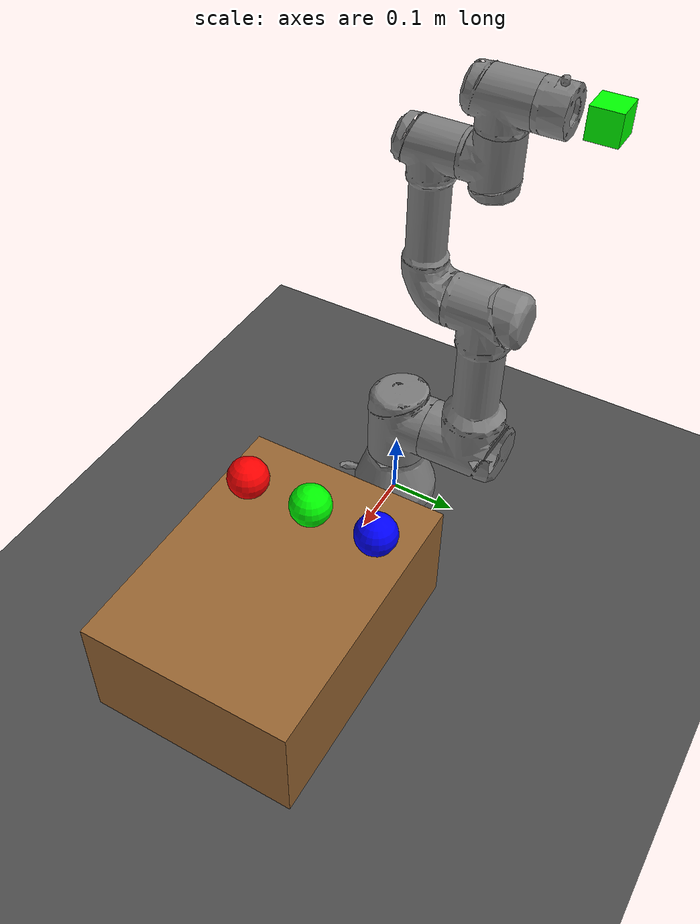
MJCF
<mujoco model="ur3 scene">

    <include file="ur3.xml"/>

    <statistic center="0.3 0 0.4"
               extent="1.0"/>

    <visual>

        <headlight diffuse="1 1 1"
                   ambient="0.3 0.3 0.3"
                   specular="0.2 0.2 0.2"/>

        <rgba haze="0.05 0.1 0.15 1"/>

        <global azimuth="135"
                elevation="-20"/>

    </visual>

    <asset>

        <texture
            type="skybox"
            builtin="gradient"
            rgb1="0.6 0.8 1.0"
            rgb2="0.1 0.2 0.3"
            width="512"
            height="3072"/>

        <texture
            type="2d"
            name="groundplane"
            builtin="checker"
            rgb1="0.4 0.4 0.4"
            rgb2="0.2 0.2 0.2"
            width="300"
            height="300"/>

        <material
            name="groundplane"
            texture="groundplane"
            texrepeat="5 5"/>

    </asset>

    <worldbody>

        <light pos="0 0 3"/>

        <geom
            name="floor"
            type="plane"
            size="0 0 0.05"
            material="groundplane"/>

        <body name="table">

            <geom
                type="box"
                pos="0.35 0 0.08"
                size="0.20 0.15 0.08"
                rgba="0.6 0.4 0.2 1"/>

        </body>

    </worldbody>

</mujoco>

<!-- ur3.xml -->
<mujoco model="ur3">
  <compiler angle="radian" meshdir="../assets"/>

  <option integrator="implicit" timestep="0.005"/>

  <default>
    <default class="ur3">
      <material specular="0.5" shininess="0.25"/>
      <joint axis="0 1 0" range="-3.14159 3.14159" armature="0.1" damping="5.0"/>
      <general gaintype="fixed" biastype="affine" ctrlrange="-3.1415 3.1415" gainprm="2000" biasprm="0 -2000 -400" forcerange="-500 500"/>
      <default class="size3">
        <default class="size3_limited">
          <joint range="-1.5708 1.5708"/>
          <general ctrlrange="-1.5708 1.5708"/>
        </default>
      </default>
      <default class="size1">
        <general gainprm="5000" biasprm="0 -5000 -1000" forcerange="-500 500"/>
      </default>
      <default class="visual">
        <geom type="mesh" contype="0" conaffinity="0" group="2"/>
      </default>
      <default class="collision">
        <geom type="capsule" group="3" size="0.03"/>
        <default class="eef_collision">
          <geom type="cylinder" size="0.02"/>
        </default>
      </default>
      <site size="0.001" rgba="0.5 0.5 0.5 0.3" group="4"/>
    </default>
  </default>

  <asset>
    <mesh name="ur3_base" file="ur3_base.obj" />
    <mesh name="ur3_shoulder" file="ur3_shoulder.obj" />
    <mesh name="ur3_upperarm" file="ur3_upperarm.obj" />
    <mesh name="ur3_forearm" file="ur3_forearm.obj" />
    <mesh name="ur3_wrist1" file="ur3_wrist1.obj" />
    <mesh name="ur3_wrist2" file="ur3_wrist2.obj" />
    <mesh name="ur3_wrist3" file="ur3_wrist3.obj" />
  </asset>

  <worldbody>
    <site
      name="earphones_target"
      pos="0.25 0.10 0.19"
      size="0.03"
      rgba="0 0 1 1"/>

    <site
      name="mouse_target"
      pos="0.25 0.00 0.19"
      size="0.03"
      rgba="0 1 0 1"/>

    <site
      name="ram_target"
      pos="0.25 -0.10 0.19"
      size="0.03"
      rgba="1 0 0 1"/>
    <body name="base" pos="0 0 0" childclass="ur3">
      <inertial mass="5.0" pos="0 0 0.05" diaginertia="0.01 0.01 0.01"/>
      <geom type="mesh" mesh="ur3_base"/>
      <body name="shoulder_link" pos="0 0 0.152">
        <inertial mass="3.0" pos="0 0 0.05" diaginertia="0.01 0.01 0.01"/>
        <joint name="shoulder_pan_joint" axis="0 0 1" range="-2.5 2.5" damping="0.001"/>
        <geom type="mesh" mesh="ur3_shoulder"/>
        <body name="upper_arm_link" pos="0 0.1198 0">
          <inertial mass="3.42" pos="0 0 0.1" diaginertia="0.01 0.01 0.01"/>
          <joint name="shoulder_lift_joint" axis="0 1 0" range="-2.5 2.5"/>
          <geom type="mesh" mesh="ur3_upperarm"/>
          <body name="forearm_link" pos="0 -0.0925 0.24365">
            <inertial mass="1.5" pos="0 0 0.08" diaginertia="0.01 0.01 0.01"/>
            <joint name="elbow_joint" axis="0 1 0" range="-2.5 2.5"/>
            <geom type="mesh" mesh="ur3_forearm"/>
            <body name="wrist_1_link" pos="0 0 0.21325">
              <inertial mass="3.42" pos="0 0 0.1" diaginertia="0.01 0.01 0.01"/>
              <joint name="wrist_1_joint" axis="0 1 0" range="-2.5 2.5"/>
              <geom type="mesh" mesh="ur3_wrist1"/>
              <body name="wrist_2_link" pos="0 0.08505 0">
                <inertial mass="3.42" pos="0 0 0.1" diaginertia="0.01 0.01 0.01"/>
                <joint name="wrist_2_joint" axis="0 0 1" range="-2.5 2.5"/>
                <geom type="mesh" mesh="ur3_wrist2"/>
                <body name="wrist_3_link" pos="0 0 0.08535">
                  <site name="tcp_site" pos="0 0.12 0" size="0.01" rgba="1 1 0 1"/>
		  <geom name="tcp_geom" type="box" pos="0 0.12 0" size="0.02 0.02 0.02" rgba="0 1 0 1"/>
                  <inertial mass="3.42" pos="0 0 0.1" diaginertia="0.01 0.01 0.01"/>
                  <joint name="wrist_3_joint" axis="0 1 0" range="-2.5 2.5"/>
                  <geom type="mesh" mesh="ur3_wrist3"/>
                </body>
              </body>
            </body>
          </body>
        </body>
      </body>
    </body>
  </worldbody>

  <actuator>
    <general class="size1" name="shoulder_pan" joint="shoulder_pan_joint" gainprm="1000" biasprm="0 -1000 -200" forcerange="-100 100"/>
    <general class="size3" name="shoulder_lift" joint="shoulder_lift_joint" gainprm="1000" biasprm="0 -1000 -200" forcerange="-100 100"/>
    <general class="size3_limited" name="elbow" joint="elbow_joint"/>
    <general class="size1" name="wrist_1" joint="wrist_1_joint"/>
    <general class="size1" name="wrist_2" joint="wrist_2_joint"/>
    <general class="size1" name="wrist_3" joint="wrist_3_joint"/>
  </actuator>
</mujoco>
